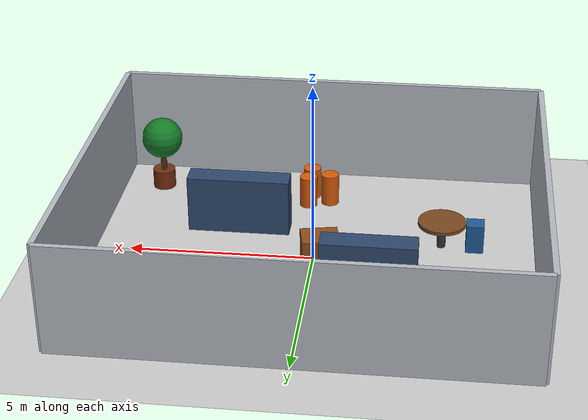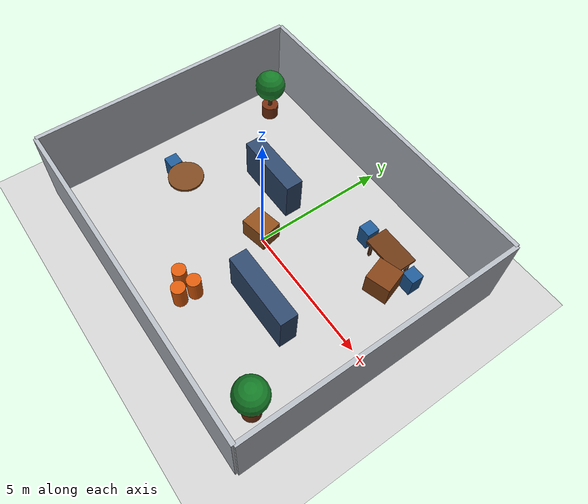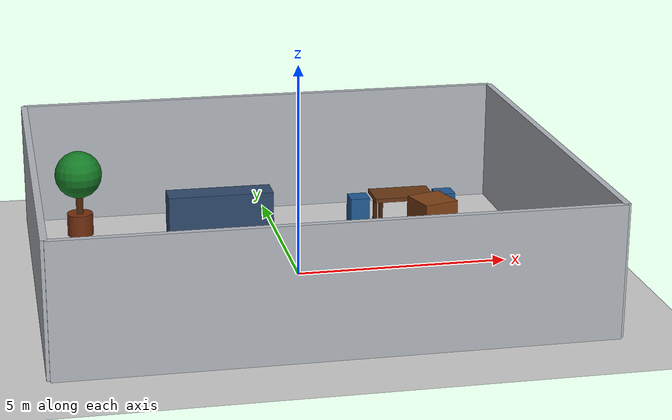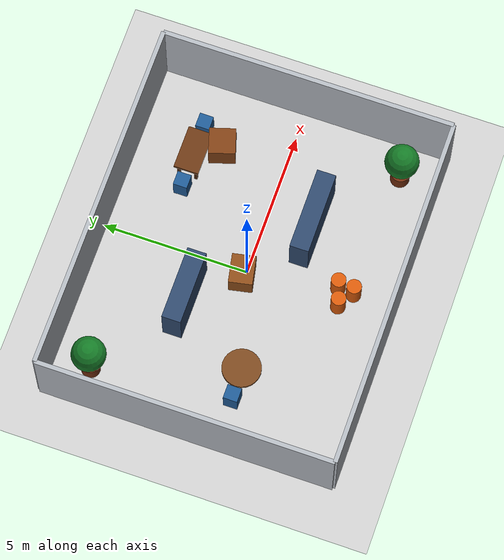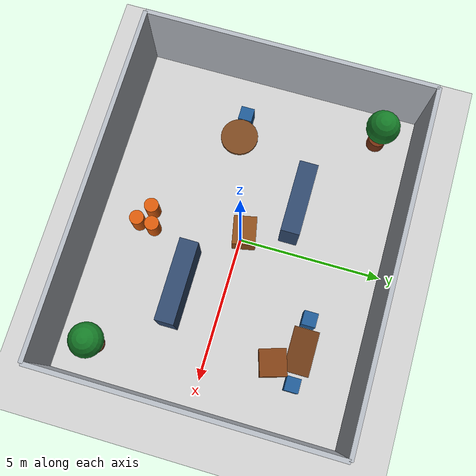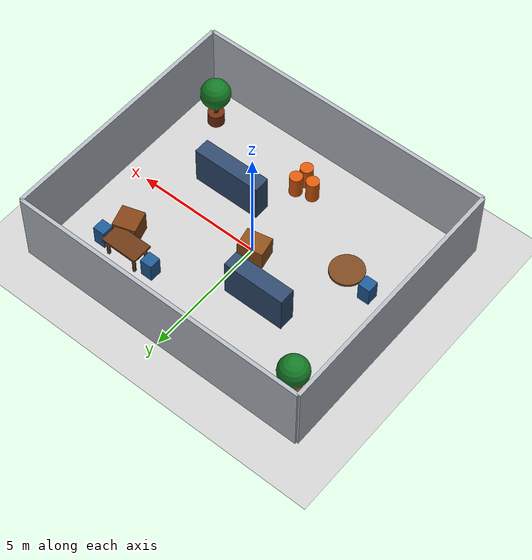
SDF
<sdf version="1.6">
 <world name="semantic_warehouse">
  <physics type="ode">
   <max_step_size>0.002</max_step_size>
   <real_time_update_rate>500</real_time_update_rate>
  </physics>
  <include><uri>model://sun</uri></include>
  <include><uri>model://ground_plane</uri></include>
  <scene><ambient>.55 .55 .58 1</ambient><background>.72 .78 .85 1</background><shadows>false</shadows></scene>
  <model name="warehouse">
   <static>true</static>
   <link name="structure">
    <collision name="n_c">
     <pose>0 5 1.5 0 0 0</pose>
     <geometry><box><size>12 .15 3</size></box></geometry>
    </collision>
    <visual name="n_v">
     <pose>0 5 1.5 0 0 0</pose>
     <geometry><box><size>12 .15 3</size></box></geometry>
     <material><ambient>.7 .72 .75 1</ambient></material>
    </visual>
    <collision name="s_c">
     <pose>0 -5 1.5 0 0 0</pose>
     <geometry><box><size>12 .15 3</size></box></geometry>
    </collision>
    <visual name="s_v">
     <pose>0 -5 1.5 0 0 0</pose>
     <geometry><box><size>12 .15 3</size></box></geometry>
     <material><ambient>.7 .72 .75 1</ambient></material>
    </visual>
    <collision name="e_c">
     <pose>6 0 1.5 0 0 0</pose>
     <geometry><box><size>.15 10 3</size></box></geometry>
    </collision>
    <visual name="e_v">
     <pose>6 0 1.5 0 0 0</pose>
     <geometry><box><size>.15 10 3</size></box></geometry>
     <material><ambient>.7 .72 .75 1</ambient></material>
    </visual>
    <collision name="w_c">
     <pose>-6 0 1.5 0 0 0</pose>
     <geometry><box><size>.15 10 3</size></box></geometry>
    </collision>
    <visual name="w_v">
     <pose>-6 0 1.5 0 0 0</pose>
     <geometry><box><size>.15 10 3</size></box></geometry>
     <material><ambient>.7 .72 .75 1</ambient></material>
    </visual>
   </link>
  </model>
  <model name="rack_a">
   <static>true</static>
   <pose>-1.6 1.6 0 0 0 0</pose>
   <link name="body">
    <collision name="c">
     <pose>0 0 .8 0 0 0</pose>
     <geometry><box><size>2.5 .65 1.6</size></box></geometry>
    </collision>
    <visual name="v">
     <pose>0 0 .8 0 0 0</pose>
     <geometry><box><size>2.5 .65 1.6</size></box></geometry>
     <material><ambient>.18 .28 .42 1</ambient></material>
    </visual>
   </link>
  </model>
  <model name="rack_b">
   <static>true</static>
   <pose>2.2 -1.5 0 0 0 0</pose>
   <link name="body">
    <collision name="c">
     <pose>0 0 .8 0 0 0</pose>
     <geometry><box><size>2.8 .65 1.6</size></box></geometry>
    </collision>
    <visual name="v">
     <pose>0 0 .8 0 0 0</pose>
     <geometry><box><size>2.8 .65 1.6</size></box></geometry>
     <material><ambient>.18 .28 .42 1</ambient></material>
    </visual>
   </link>
  </model>
  <model name="crate">
   <static>true</static>
   <pose>3.8 2.2 0 0 0 .3</pose>
   <link name="body">
    <collision name="c">
     <pose>0 0 .45 0 0 0</pose>
     <geometry><box><size>.9 .9 .9</size></box></geometry>
    </collision>
    <visual name="v">
     <pose>0 0 .45 0 0 0</pose>
     <geometry><box><size>.9 .9 .9</size></box></geometry>
     <material><ambient>.5 .25 .08 1</ambient></material>
    </visual>
   </link>
  </model>
  <model name="work_table">
   <static>true</static>
   <pose>3.2 3.0 0 0 0 0</pose>
   <link name="table">
    <collision name="footprint">
     <pose>0 0 .4 0 0 0</pose>
     <geometry><box><size>1.5 .85 .8</size></box></geometry>
    </collision>
    <visual name="top">
     <pose>0 0 .78 0 0 0</pose>
     <geometry><box><size>1.5 .85 .10</size></box></geometry>
     <material><ambient>.42 .22 .08 1</ambient></material>
    </visual>
    <visual name="leg1">
     <pose>.60 .30 .38 0 0 0</pose>
     <geometry><box><size>.10 .10 .75</size></box></geometry>
     <material><ambient>.25 .12 .04 1</ambient></material>
    </visual>
    <visual name="leg2">
     <pose>.60 -.30 .38 0 0 0</pose>
     <geometry><box><size>.10 .10 .75</size></box></geometry>
     <material><ambient>.25 .12 .04 1</ambient></material>
    </visual>
    <visual name="leg3">
     <pose>-.60 .30 .38 0 0 0</pose>
     <geometry><box><size>.10 .10 .75</size></box></geometry>
     <material><ambient>.25 .12 .04 1</ambient></material>
    </visual>
    <visual name="leg4">
     <pose>-.60 -.30 .38 0 0 0</pose>
     <geometry><box><size>.10 .10 .75</size></box></geometry>
     <material><ambient>.25 .12 .04 1</ambient></material>
    </visual>
   </link>
  </model>
  <model name="meeting_table">
   <static>true</static>
   <pose>-3.4 -1.0 0 0 0 .3</pose>
   <link name="table">
    <collision name="footprint">
     <pose>0 0 .38 0 0 0</pose>
     <geometry><cylinder><radius>.65</radius><length>.76</length></cylinder></geometry>
    </collision>
    <visual name="top">
     <pose>0 0 .76 0 0 0</pose>
     <geometry><cylinder><radius>.65</radius><length>.10</length></cylinder></geometry>
     <material><ambient>.48 .28 .12 1</ambient></material>
    </visual>
    <visual name="pedestal">
     <pose>0 0 .38 0 0 0</pose>
     <geometry><cylinder><radius>.12</radius><length>.70</length></cylinder></geometry>
     <material><ambient>.20 .20 .22 1</ambient></material>
    </visual>
   </link>
  </model>
  <model name="chair_group">
   <static>true</static>
   <link name="chairs">
    <collision name="c1">
     <pose>2.1 3.0 .4 0 0 0</pose>
     <geometry><box><size>.48 .48 .8</size></box></geometry>
    </collision>
    <visual name="v1">
     <pose>2.1 3.0 .4 0 0 0</pose>
     <geometry><box><size>.48 .48 .8</size></box></geometry>
     <material><ambient>.12 .35 .58 1</ambient></material>
    </visual>
    <collision name="c2">
     <pose>4.3 3.0 .4 0 0 0</pose>
     <geometry><box><size>.48 .48 .8</size></box></geometry>
    </collision>
    <visual name="v2">
     <pose>4.3 3.0 .4 0 0 0</pose>
     <geometry><box><size>.48 .48 .8</size></box></geometry>
     <material><ambient>.12 .35 .58 1</ambient></material>
    </visual>
    <collision name="c3">
     <pose>-4.3 -1.0 .4 0 0 0</pose>
     <geometry><box><size>.48 .48 .8</size></box></geometry>
    </collision>
    <visual name="v3">
     <pose>-4.3 -1.0 .4 0 0 0</pose>
     <geometry><box><size>.48 .48 .8</size></box></geometry>
     <material><ambient>.12 .35 .58 1</ambient></material>
    </visual>
   </link>
  </model>
  <model name="indoor_tree_1">
   <static>true</static>
   <pose>-4.8 3.7 0 0 0 0</pose>
   <link name="plant">
    <collision name="c">
     <pose>0 0 .65 0 0 0</pose>
     <geometry><cylinder><radius>.32</radius><length>1.3</length></cylinder></geometry>
    </collision>
    <visual name="pot">
     <pose>0 0 .28 0 0 0</pose>
     <geometry><cylinder><radius>.32</radius><length>.55</length></cylinder></geometry>
     <material><ambient>.45 .18 .06 1</ambient></material>
    </visual>
    <visual name="trunk">
     <pose>0 0 .90 0 0 0</pose>
     <geometry><cylinder><radius>.09</radius><length>.85</length></cylinder></geometry>
     <material><ambient>.32 .16 .05 1</ambient></material>
    </visual>
    <visual name="crown">
     <pose>0 0 1.55 0 0 0</pose>
     <geometry><sphere><radius>.58</radius></sphere></geometry>
     <material><ambient>.08 .48 .15 1</ambient></material>
    </visual>
   </link>
  </model>
  <model name="indoor_tree_2">
   <static>true</static>
   <pose>4.8 -3.7 0 0 0 0</pose>
   <link name="plant">
    <collision name="c">
     <pose>0 0 .65 0 0 0</pose>
     <geometry><cylinder><radius>.32</radius><length>1.3</length></cylinder></geometry>
    </collision>
    <visual name="pot">
     <pose>0 0 .28 0 0 0</pose>
     <geometry><cylinder><radius>.32</radius><length>.55</length></cylinder></geometry>
     <material><ambient>.45 .18 .06 1</ambient></material>
    </visual>
    <visual name="trunk">
     <pose>0 0 .90 0 0 0</pose>
     <geometry><cylinder><radius>.09</radius><length>.85</length></cylinder></geometry>
     <material><ambient>.32 .16 .05 1</ambient></material>
    </visual>
    <visual name="crown">
     <pose>0 0 1.55 0 0 0</pose>
     <geometry><sphere><radius>.58</radius></sphere></geometry>
     <material><ambient>.08 .48 .15 1</ambient></material>
    </visual>
   </link>
  </model>
  <model name="barrel_cluster">
   <static>true</static>
   <pose>.2 -3.2 0 0 0 0</pose>
   <link name="barrels">
    <collision name="b1c">
     <pose>-.35 0 .45 0 0 0</pose>
     <geometry><cylinder><radius>.25</radius><length>.9</length></cylinder></geometry>
    </collision>
    <visual name="b1v">
     <pose>-.35 0 .45 0 0 0</pose>
     <geometry><cylinder><radius>.25</radius><length>.9</length></cylinder></geometry>
     <material><ambient>.85 .35 .04 1</ambient></material>
    </visual>
    <collision name="b2c">
     <pose>.25 .2 .45 0 0 0</pose>
     <geometry><cylinder><radius>.25</radius><length>.9</length></cylinder></geometry>
    </collision>
    <visual name="b2v">
     <pose>.25 .2 .45 0 0 0</pose>
     <geometry><cylinder><radius>.25</radius><length>.9</length></cylinder></geometry>
     <material><ambient>.85 .35 .04 1</ambient></material>
    </visual>
    <collision name="b3c">
     <pose>.2 -.35 .45 0 0 0</pose>
     <geometry><cylinder><radius>.25</radius><length>.9</length></cylinder></geometry>
    </collision>
    <visual name="b3v">
     <pose>.2 -.35 .45 0 0 0</pose>
     <geometry><cylinder><radius>.25</radius><length>.9</length></cylinder></geometry>
     <material><ambient>.85 .35 .04 1</ambient></material>
    </visual>
   </link>
  </model>
  <model name="small_crates">
   <static>true</static>
   <pose>-.2 .1 0 0 0 .2</pose>
   <link name="stack">
    <collision name="c">
     <pose>0 0 .4 0 0 0</pose>
     <geometry><box><size>1.0 .8 .8</size></box></geometry>
    </collision>
    <visual name="v">
     <pose>0 0 .4 0 0 0</pose>
     <geometry><box><size>1.0 .8 .8</size></box></geometry>
     <material><ambient>.55 .3 .1 1</ambient></material>
    </visual>
   </link>
  </model>
 </world>
</sdf>
